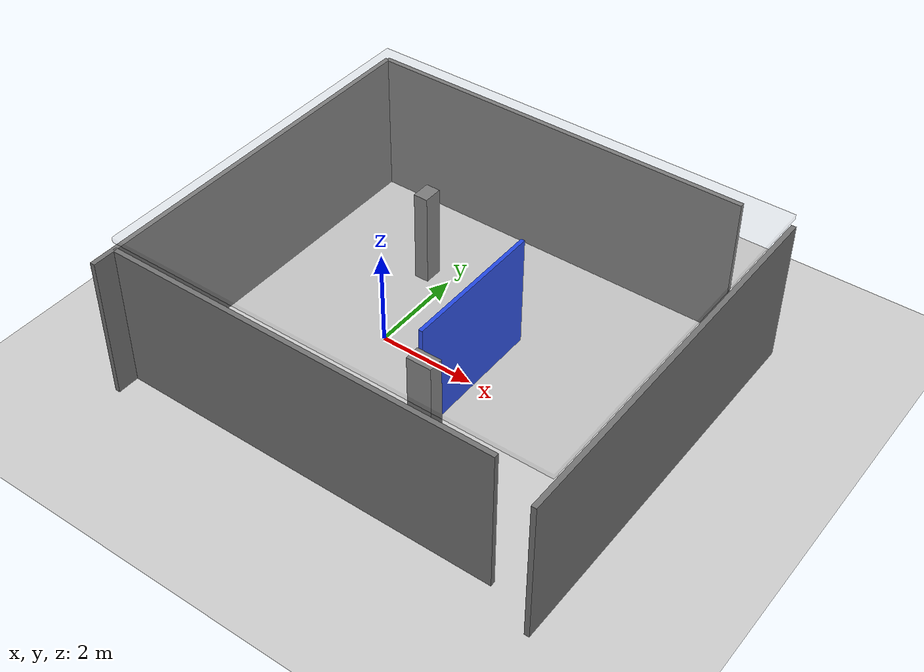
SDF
<?xml version='1.0' encoding='UTF-8'?>
<sdf version="1.6"><world name="default">
<include><uri>model://sun</uri></include><include><uri>model://ground_plane</uri></include>
<physics name="default_physics" type="ode"><max_step_size>0.001</max_step_size><real_time_update_rate>1000</real_time_update_rate><ode><solver><type>quick</type><iters>100</iters></solver></ode></physics>
<scene><ambient>0.7 0.7 0.7 1</ambient><shadows>false</shadows></scene>
<model name="rear"><static>true</static><pose>-3 0 1.5 0 0 0</pose><link name="body">
      <inertial><mass>0.01</mass><inertia><ixx>1.041666666666667e-06</ixx><iyy>1.041666666666667e-06</iyy><izz>1.041666666666667e-06</izz></inertia></inertial>
      <collision name="collision"><geometry><box><size>.1 8 3</size></box></geometry><surface><friction><ode><mu>1.2</mu><mu2>1.2</mu2></ode></friction><contact><ode><kp>20000</kp><kd>40</kd><max_vel>0.1</max_vel><min_depth>0.0001</min_depth></ode></contact></surface></collision>
      <visual name="visual"><geometry><box><size>.1 8 3</size></box></geometry><material><ambient>.45 .45 .45 1</ambient><diffuse>.45 .45 .45 1</diffuse></material></visual>
    </link></model><model name="side_l"><static>true</static><pose>1 4 1.5 0 0 0</pose><link name="body">
      <inertial><mass>0.01</mass><inertia><ixx>1.041666666666667e-06</ixx><iyy>1.041666666666667e-06</iyy><izz>1.041666666666667e-06</izz></inertia></inertial>
      <collision name="collision"><geometry><box><size>8 .1 3</size></box></geometry><surface><friction><ode><mu>1.2</mu><mu2>1.2</mu2></ode></friction><contact><ode><kp>20000</kp><kd>40</kd><max_vel>0.1</max_vel><min_depth>0.0001</min_depth></ode></contact></surface></collision>
      <visual name="visual"><geometry><box><size>8 .1 3</size></box></geometry><material><ambient>.45 .45 .45 1</ambient><diffuse>.45 .45 .45 1</diffuse></material></visual>
    </link></model><model name="side_r"><static>true</static><pose>1 -3.5 1.5 0 0 0</pose><link name="body">
      <inertial><mass>0.01</mass><inertia><ixx>1.041666666666667e-06</ixx><iyy>1.041666666666667e-06</iyy><izz>1.041666666666667e-06</izz></inertia></inertial>
      <collision name="collision"><geometry><box><size>8 .1 3</size></box></geometry><surface><friction><ode><mu>1.2</mu><mu2>1.2</mu2></ode></friction><contact><ode><kp>20000</kp><kd>40</kd><max_vel>0.1</max_vel><min_depth>0.0001</min_depth></ode></contact></surface></collision>
      <visual name="visual"><geometry><box><size>8 .1 3</size></box></geometry><material><ambient>.45 .45 .45 1</ambient><diffuse>.45 .45 .45 1</diffuse></material></visual>
    </link></model><model name="far"><static>true</static><pose>6 0 1.5 0 0 0</pose><link name="body">
      <inertial><mass>0.01</mass><inertia><ixx>1.041666666666667e-06</ixx><iyy>1.041666666666667e-06</iyy><izz>1.041666666666667e-06</izz></inertia></inertial>
      <collision name="collision"><geometry><box><size>.1 8 3</size></box></geometry><surface><friction><ode><mu>1.2</mu><mu2>1.2</mu2></ode></friction><contact><ode><kp>20000</kp><kd>40</kd><max_vel>0.1</max_vel><min_depth>0.0001</min_depth></ode></contact></surface></collision>
      <visual name="visual"><geometry><box><size>.1 8 3</size></box></geometry><material><ambient>.45 .45 .45 1</ambient><diffuse>.45 .45 .45 1</diffuse></material></visual>
    </link></model><model name="post1"><static>true</static><pose>-.5 2 1 0 0 0</pose><link name="body">
      <inertial><mass>0.01</mass><inertia><ixx>1.041666666666667e-06</ixx><iyy>1.041666666666667e-06</iyy><izz>1.041666666666667e-06</izz></inertia></inertial>
      <collision name="collision"><geometry><box><size>.3 .4 2</size></box></geometry><surface><friction><ode><mu>1.2</mu><mu2>1.2</mu2></ode></friction><contact><ode><kp>20000</kp><kd>40</kd><max_vel>0.1</max_vel><min_depth>0.0001</min_depth></ode></contact></surface></collision>
      <visual name="visual"><geometry><box><size>.3 .4 2</size></box></geometry><material><ambient>.45 .45 .45 1</ambient><diffuse>.45 .45 .45 1</diffuse></material></visual>
    </link></model><model name="post2"><static>true</static><pose>2.5 -2 1.2 0 0 0</pose><link name="body">
      <inertial><mass>0.01</mass><inertia><ixx>1.041666666666667e-06</ixx><iyy>1.041666666666667e-06</iyy><izz>1.041666666666667e-06</izz></inertia></inertial>
      <collision name="collision"><geometry><box><size>.5 .3 2.4</size></box></geometry><surface><friction><ode><mu>1.2</mu><mu2>1.2</mu2></ode></friction><contact><ode><kp>20000</kp><kd>40</kd><max_vel>0.1</max_vel><min_depth>0.0001</min_depth></ode></contact></surface></collision>
      <visual name="visual"><geometry><box><size>.5 .3 2.4</size></box></geometry><material><ambient>.45 .45 .45 1</ambient><diffuse>.45 .45 .45 1</diffuse></material></visual>
    </link></model><model name="rebound_wall"><static>true</static><pose>2.04 0 1.2 0 0 0</pose><link name="body">
      <inertial><mass>0.01</mass><inertia><ixx>1.041666666666667e-06</ixx><iyy>1.041666666666667e-06</iyy><izz>1.041666666666667e-06</izz></inertia></inertial>
      <collision name="collision"><geometry><box><size>.08 3 2.4</size></box></geometry><surface><friction><ode><mu>1.2</mu><mu2>1.2</mu2></ode></friction><contact><ode><kp>20000</kp><kd>40</kd><max_vel>0.1</max_vel><min_depth>0.0001</min_depth></ode></contact></surface></collision>
      <visual name="visual"><geometry><box><size>.08 3 2.4</size></box></geometry><material><ambient>0.02 0.2 0.95 1</ambient><diffuse>0.02 0.2 0.95 1</diffuse></material></visual>
    </link></model><model name="wall_target"><static>true</static><pose>1.998 0 1.4 0 0 0</pose><link name="target"><visual name="red_dot"><geometry><sphere><radius>.018</radius></sphere></geometry><material><ambient>1 0 0 1</ambient><diffuse>1 0 0 1</diffuse></material></visual></link></model><plugin name="clock_config" filename="libgazebo_ros_state.so"><update_rate>50</update_rate></plugin><model name="lidar_ceiling"><static>true</static><pose>1.5 0.25 3.2 0 0 0</pose><link name="body"><collision name="collision"><geometry><box><size>9 7.5 0.1</size></box></geometry></collision><visual name="visual"><geometry><box><size>9 7.5 0.1</size></box></geometry><material><ambient>.65 .65 .65 1</ambient><diffuse>.65 .65 .65 1</diffuse></material><transparency>0.85</transparency></visual></link></model></world></sdf>
